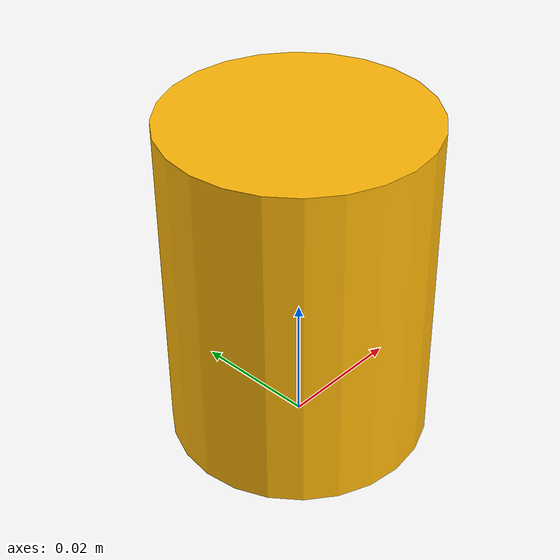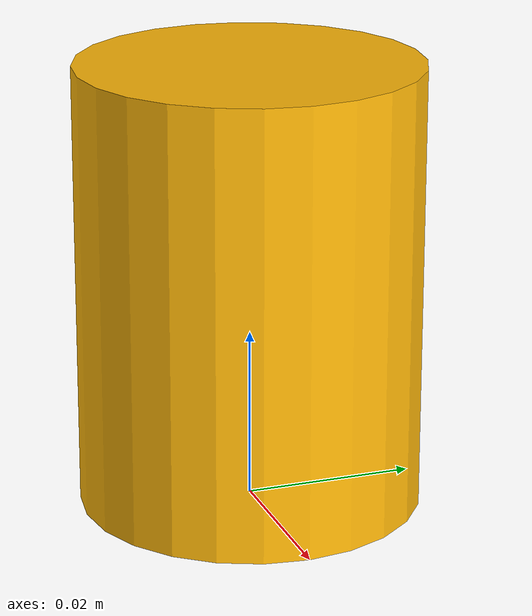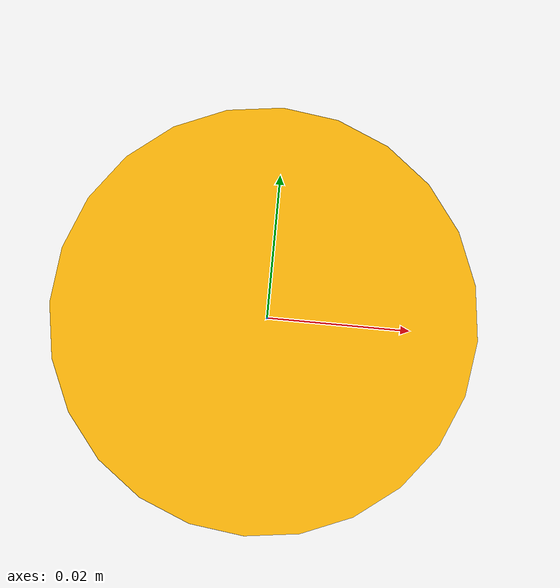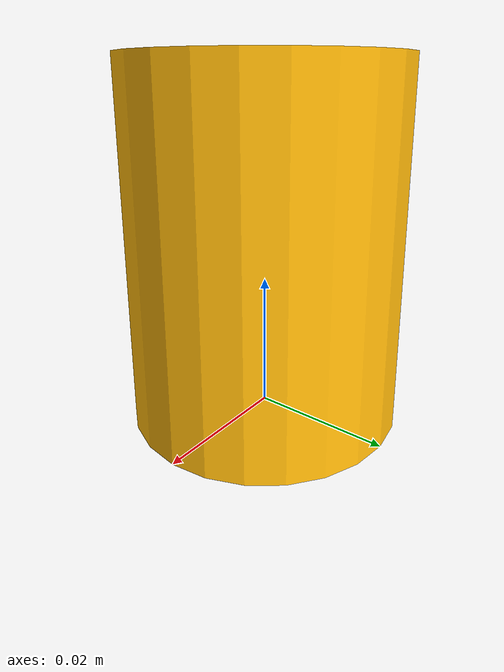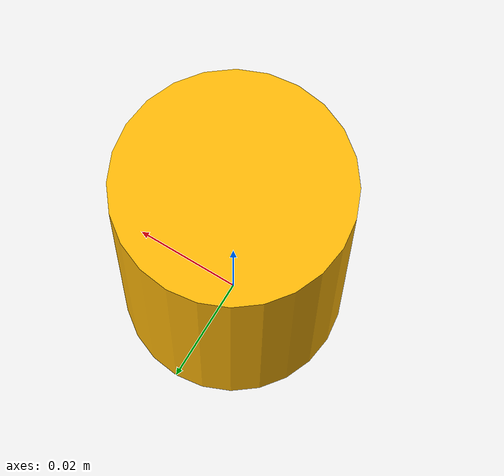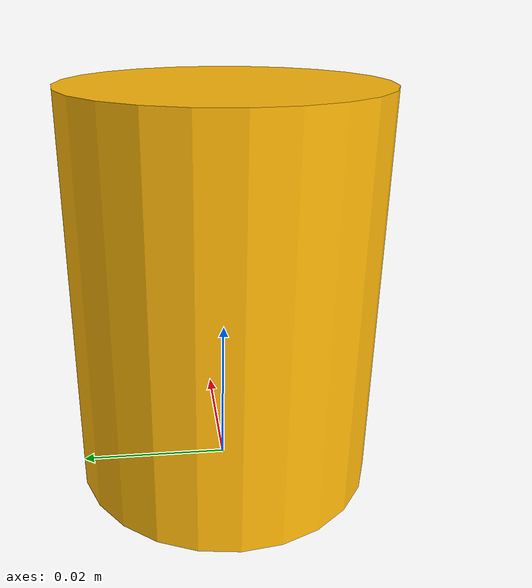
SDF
<?xml version="1.0"?>
<sdf version="1.9"><model name="rebotarm_yellow_cylinder"><link name="body">
  <inertial><mass>0.042</mass><inertia><ixx>0.00001366</ixx><iyy>0.00001366</iyy><izz>0.00000840</izz></inertia></inertial>
  <collision name="collision"><pose>0 0 0.026 0 0 0</pose><geometry><cylinder><radius>0.02</radius><length>0.052</length></cylinder></geometry><surface><friction><ode><mu>2</mu><mu2>2</mu2></ode></friction></surface></collision>
  <visual name="visual"><pose>0 0 0.026 0 0 0</pose><geometry><cylinder><radius>0.02</radius><length>0.052</length></cylinder></geometry><material><ambient>0.82 0.52 0.01 1</ambient><diffuse>1 0.72 0.03 1</diffuse></material></visual>
</link></model></sdf>
